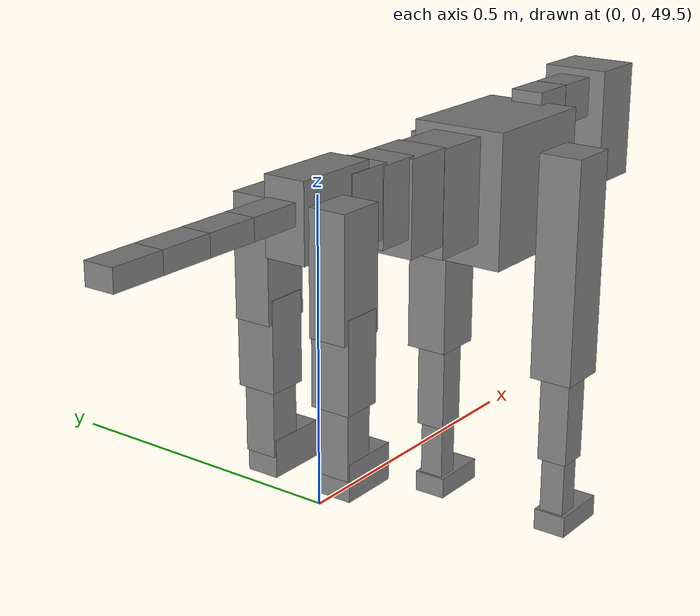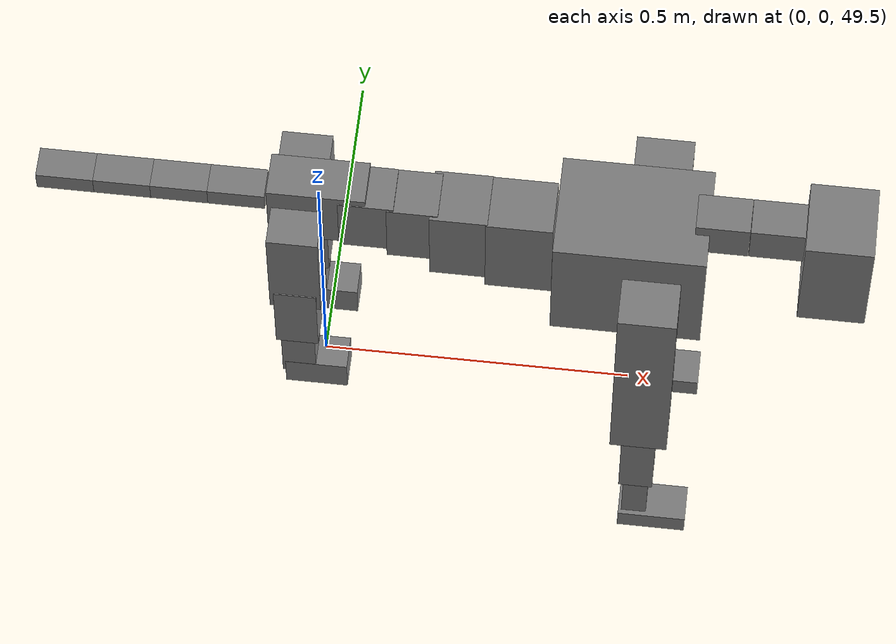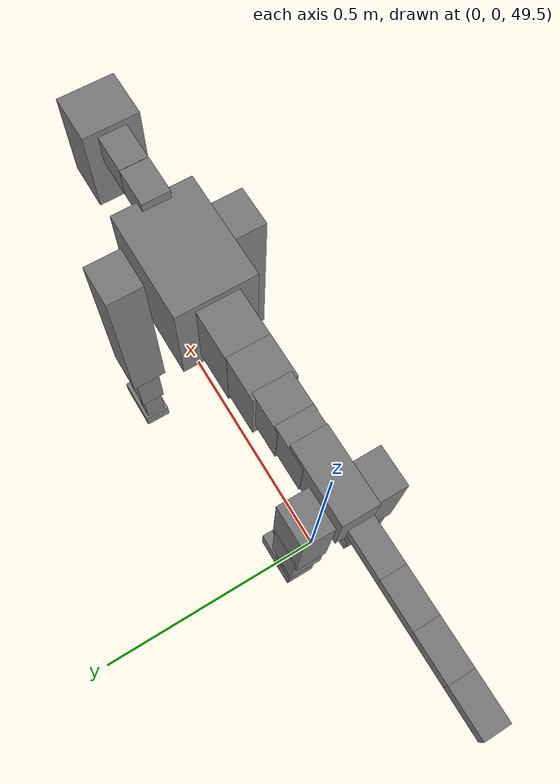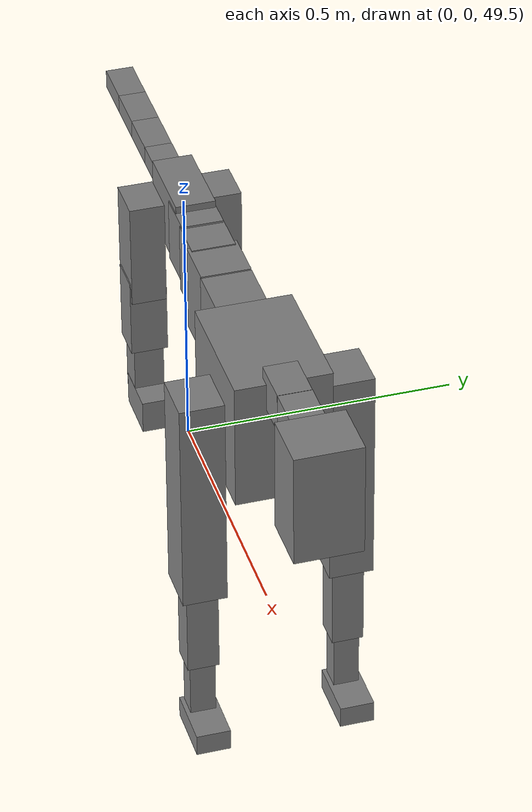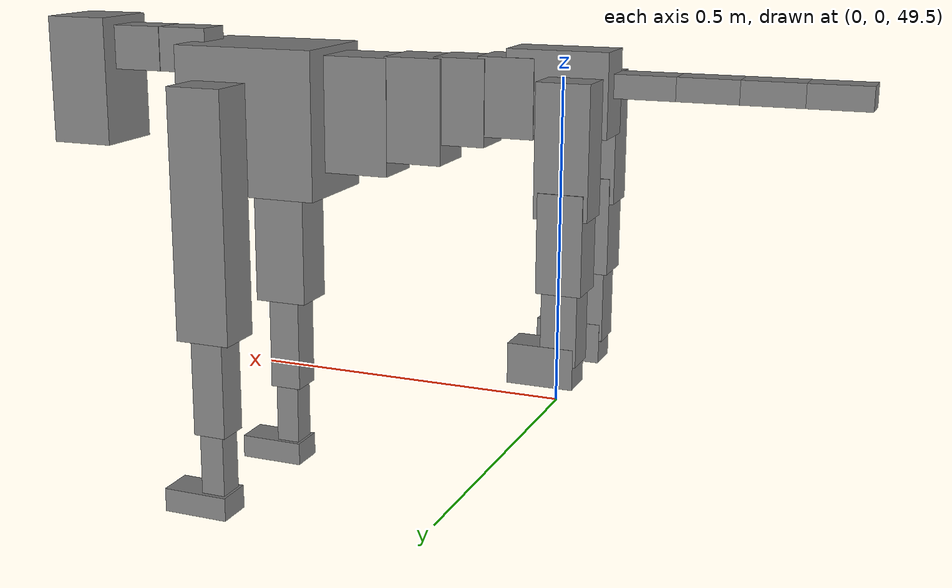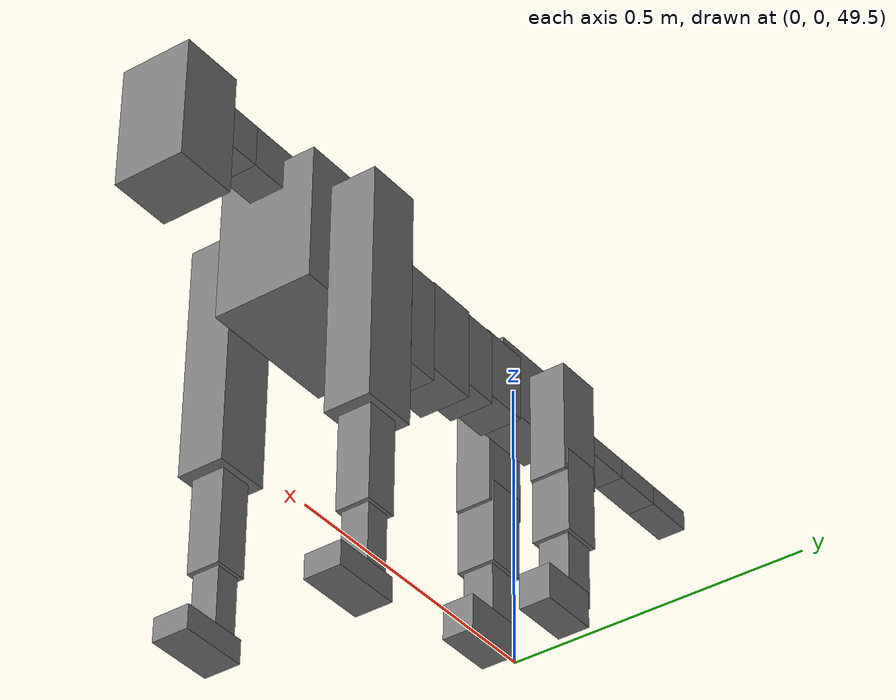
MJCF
<mujoco model="dog">

    <default>
        <joint armature="0.02" stiffness="1" damping="0.2" limited="true"/>
        <geom condim="3" friction="1 0.05 0.05" margin="0.01"/>
        <motor ctrllimited="true" ctrlrange="-1.0 1.0" forcelimited="true" gear="50"/>
    </default>

    <compiler inertiafromgeom="true" angle="radian"/>

    <option timestep="0.016" iterations="50" tolerance="1e-10" solver="Newton" jacobian="dense" cone="pyramidal"/>

    <size nconmax="20000" njmax="60000" nstack="5000000"/>
    <visual>
        <map force="0.1" zfar="30"/>
        <rgba haze="0.15 0.25 0.35 1"/>
        <quality shadowsize="2048"/>
        <global offwidth="800" offheight="800"/>
    </visual>

    <asset>
        <texture type="skybox" builtin="gradient" rgb1="0.3 0.5 0.7" rgb2="0 0 0" width="512" height="512"/>
        <texture name="texplane" type="2d" builtin="checker" rgb1=".2 .3 .4" rgb2=".1 0.15 0.2" width="512" height="512"
                 mark="cross" markrgb=".8 .8 .8"/>
        <texture name="texgeom" type="cube" builtin="flat" mark="cross" width="127" height="1278" rgb1="0.8 0.6 0.4"
                 rgb2="0.8 0.6 0.4" markrgb="1 1 1" random="0.01"/>

        <material name="matplane" reflectance="0.3" texture="texplane" texrepeat="1 1" texuniform="true"/>
        <material name="matgeom" texture="texgeom" texuniform="true" rgba="0.8 0.6 .4 1"/>
    </asset>

    <worldbody>
        <geom name="floor" pos="0 0 0" size="0 0 .25" type="plane" material="matplane" condim="3"/>

        <light directional="false" diffuse=".2 .2 .2" specular="0 0 0" pos="0 0 5" dir="0 0 -1" castshadow="false"/>
        <light mode="targetbodycom" target="torso" directional="false" diffuse=".8 .8 .8" specular="0.3 0.3 0.3"
               pos="0 0 4.0" dir="0 0 -1"/>

        <body name="root" pos="0 0 50">
            <freejoint name="root_1"/>
            <geom type="box" pos="0 0 -0.02" size="0.0774  0.0358  0.063" density="2030"/>

            <body name="spine1" pos="0.054 0 0">
                <joint name="spine1_y" axis="0 1 0" range="0 0.7" limited="true"/>
                <geom type="box" pos="0.02375 0 -0.03" size="0.04375  0.0375  0.05985" density="2030"/>

                <body name="spine2" pos="0.0612 0 0">
                    <joint name="spine2_y" axis="0 1 0" range="-0.15 0.15" limited="true"/>
                    <geom type="box" pos="0.03555  0  -0.04" size="0.04055  0.039  0.06615" density="2030"/>

                    <body name="spine3" pos="0.0730 0 0">
                        <joint name="spine3_y" axis="0 1 0" range="-0.15 0.15" limited="true"/>
                        <geom type="box" pos="0.03555  0  -0.057" size="0.04555  0.0445  0.081" density="2030"/>

                        <body name="spine4" pos="0.0780 0 0">
                            <joint name="spine4_y" axis="0 1 0" range="-0.15 0.15" limited="true"/>
                            <geom type="box" pos="0.05265  0  -0.07" size="0.05265  0.045  0.09135" density="2030"/>

                            <body name="torso" pos="0.1082 0 0">
                                <joint name="torso_y" axis="0 1 0" range="-0.15 0.15" limited="true"/>
                                <geom type="box" pos="0.11925  0  -0.085" size="0.11925  0.085  0.11745"
                                      density="2030"/>

                                <body name="neck1" pos="0.2160  0   0.0180">
                                    <joint name="neck1_y" axis="0 1 0" range="-1.2  -1" limited="true"/>
                                    <geom type="box" pos="0.0423  0  0" size="0.0423  0.03  0.036" density="2325"/>

                                    <body name="neck2" pos="0.0853  0  0">
                                        <joint name="neck2_y" axis="0 1 0" range="0.1  0" limited="true"/>
                                        <geom type="box" pos="0.0423  0  0" size="0.0423  0.03  0.036" density="2325"/>

                                        <body name="head" pos="0.0853  0  0">
                                            <joint name="head_y" axis="0 1 0" range="-0.3  -0.2" limited="true"/>
                                            <geom type="box" pos="0.0531  0  -0.055" size="0.0531  0.06  0.1044"
                                                  density="4030"/>

                                        </body>
                                    </body>
                                </body>

                                <body name="front_shoulder" pos="0.156  0   -0.0480">
                                    <joint name="front_shoulder_y" axis="0 1 0" range="-1 1.5" limited="true"/>
                                    <geom type="box" pos="0 0.13 -0.1756" size="0.0460  0.0393  0.2022" density="1158"/>
                                    <geom type="box" pos="0 -0.13 -0.1756" size="0.0460  0.0393  0.2022"
                                          density="1158"/>

                                    <body name="front_elbow" pos="0  0  -0.3512">
                                        <joint name="front_elbow_y" axis="0 1 0" range="-2 0" limited="true"/>
                                        <geom type="box" pos="0 0.13 -0.0929" size="0.0276  0.0282  0.0929"
                                              density="1081"/>
                                        <geom type="box" pos="0 -0.13 -0.0929" size="0.0276  0.0282  0.0929"
                                              density="1081"/>

                                        <body name="front_wrist" pos="0  0  -0.1859">
                                            <joint name="front_wrist_y" axis="0 1 0" range="-0.2 0" limited="true"/>
                                            <geom type="box" pos="0 0.13 -0.0583" size="0.0205  0.0228  0.0715"
                                                  density="1664"/>
                                            <geom type="box" pos="0 -0.13 -0.0583" size="0.0205  0.0228  0.0715"
                                                  density="1664"/>

                                            <body name="front_finger_end" pos="0  0  -0.1167">
                                                <joint name="front_finger_y" axis="0 1 0" range="-0.4 1"
                                                       limited="true"/>
                                                <geom type="box" pos="0.0306  0.13  -0.0048"
                                                      size="0.0560  0.0306  0.0198" density="1515"/>
                                                <geom type="box" pos="0.0306  -0.13  -0.0048"
                                                      size="0.0560  0.0306  0.0198" density="1515"/>

                                            </body>

                                        </body>
                                    </body>
                                </body>

                            </body>
                        </body>
                    </body>
                </body>
            </body>

            <body name="back_hip" pos="-0.03 0 -0.018">
                <joint name="back_hip_y" axis="0 1 0" range="-1.5 0.3" limited="true"/>
                <geom type="box" pos="0 0.07 -0.0760" size="0.0403  0.0316  0.0988" density="1154"/>
                <geom type="box" pos="0 -0.07 -0.0760" size="0.0403  0.0316  0.0988" density="1154"/>

                <body name="back_knee" pos="0  0  -0.1519">
                    <joint name="back_knee_y" axis="0 1 0" range="0 2.8" limited="true"/>
                    <geom type="box" pos="0 0.07 -0.0588" size="0.0340  0.0335  0.0744" density="1227"/>
                    <geom type="box" pos="0 -0.07 -0.0588" size="0.0340  0.0335  0.0744" density="1227"/>

                    <body name="back_ankle" pos="0  0  -0.1176">
                        <joint name="back_ankle_y" axis="0 1 0" range="-2.2 0" limited="true"/>
                        <geom type="box" pos="0 0.07 -0.0565" size="0.0271  0.0271  0.0678" density="1284"/>
                        <geom type="box" pos="0 -0.07 -0.0565" size="0.0271  0.0271  0.0678" density="1284"/>

                        <body name="back_toe_end" pos="0  0  -0.1131">
                            <joint name="back_toe_y" axis="0 1 0" range="-0.4 1" limited="true"/>
                            <geom type="box" pos="0.0274  0.07  -0.0158" size="0.0502  0.0274  0.0308" density="1515"/>
                            <geom type="box" pos="0.0274  -0.07  -0.0158" size="0.0502  0.0274  0.0308" density="1515"/>

                        </body>
                    </body>
                </body>
            </body>

            <body name="tail1" pos="-0.074 0 -0.006">
                <joint name="tail1_y" axis="0 1 0" range="-0.2 0.2" limited="true"/>
                <geom type="box" pos="-0.0536  0  0" size="0.045  0.025  0.0175" density="1587"/>

                <body name="tail2" pos="-0.09 0 0">
                    <joint name="tail2_y" axis="0 1 0" range="-0.2 0.2" limited="true"/>
                    <geom type="box" pos="-0.0536  0  0" size="0.045  0.025  0.0175" density="1587"/>

                    <body name="tail3" pos="-0.09 0 0">
                        <joint name="tail3_y" axis="0 1 0" range="-0.2 0.2" limited="true"/>
                        <geom type="box" pos="-0.0536  0  0" size="0.045  0.025  0.0175" density="1587"/>

                        <body name="tail4" pos="-0.09 0 0">
                            <joint name="tail4_y" axis="0 1 0" range="-0.2 0.2" limited="true"/>
                            <geom type="box" pos="-0.0536  0  0" size="0.045  0.025  0.0175" density="1587"/>

                        </body>
                    </body>
                </body>
            </body>
        </body>
    </worldbody>

    <actuator>
        <motor joint="spine1_y" forcerange="-150 150     "/>
        <motor joint="spine2_y" forcerange="-150 150     "/>
        <motor joint="spine3_y" forcerange="-150 150     "/>
        <motor joint="spine4_y" forcerange="-150 150     "/>
        <motor joint="torso_y" forcerange="-150 150     "/>
        <motor joint="neck1_y" forcerange="-100 100       "/>
        <motor joint="neck2_y" forcerange="-100 100       "/>
        <motor joint="head_y" forcerange="-150 150       "/>
        <motor joint="front_shoulder_y" forcerange="-195.70 166.14"/>
        <motor joint="front_elbow_y" forcerange="-191.72 113.17"/>
        <motor joint="front_wrist_y" forcerange="-83.56 99.10"/>
        <motor joint="front_finger_y" forcerange="-70.38 52.65"/>
        <motor joint="back_hip_y" forcerange="-249.43 372.37"/>
        <motor joint="back_knee_y" forcerange="-322.51 365.07"/>
        <motor joint="back_angle_y" forcerange="-110.34 222.60"/>
        <motor joint="back_toe_y" forcerange="-86.11 52.74"/>
        <motor joint="tail1_y" forcerange="-50 50     "/>
        <motor joint="tail2_y" forcerange="-50 50     "/>
        <motor joint="tail3_y" forcerange="-50 50     "/>
        <motor joint="tail4_y" forcerange="-50 50     "/>
    </actuator>
</mujoco>
